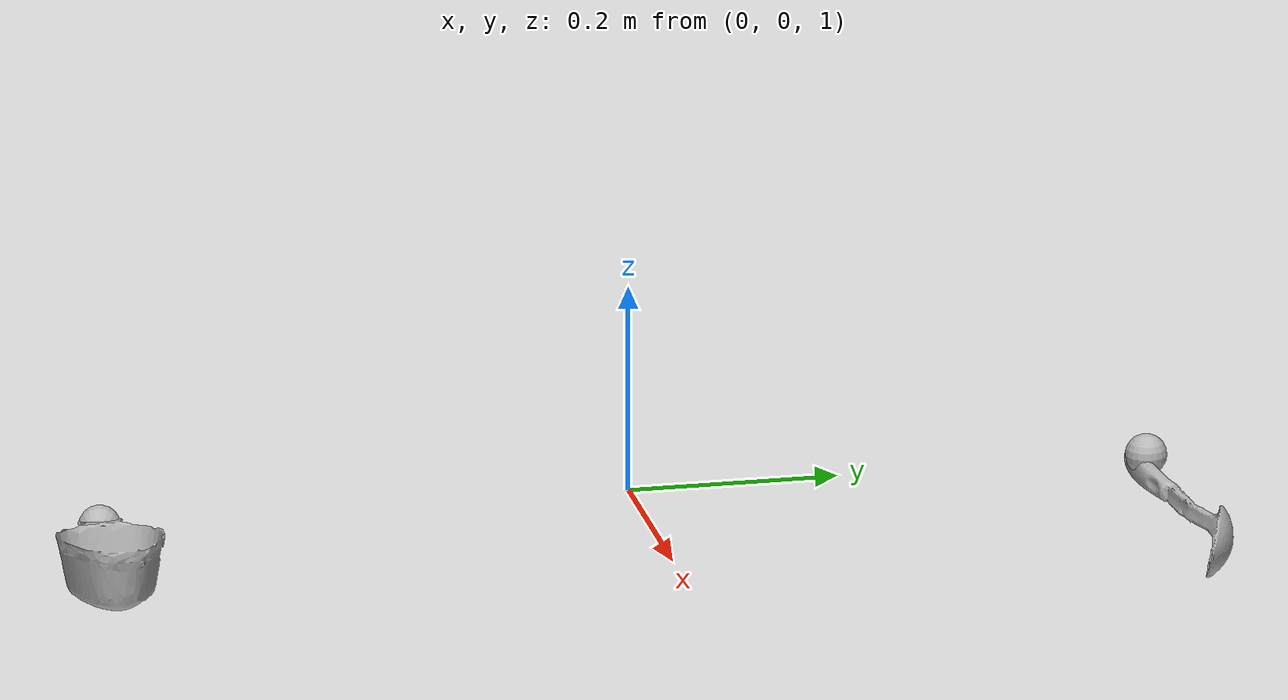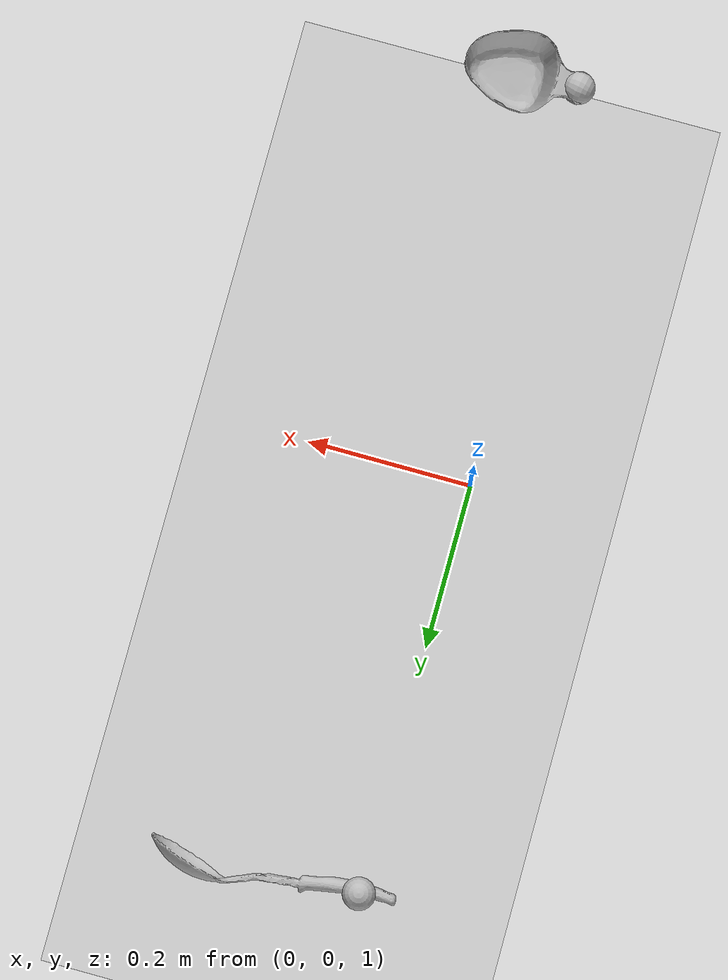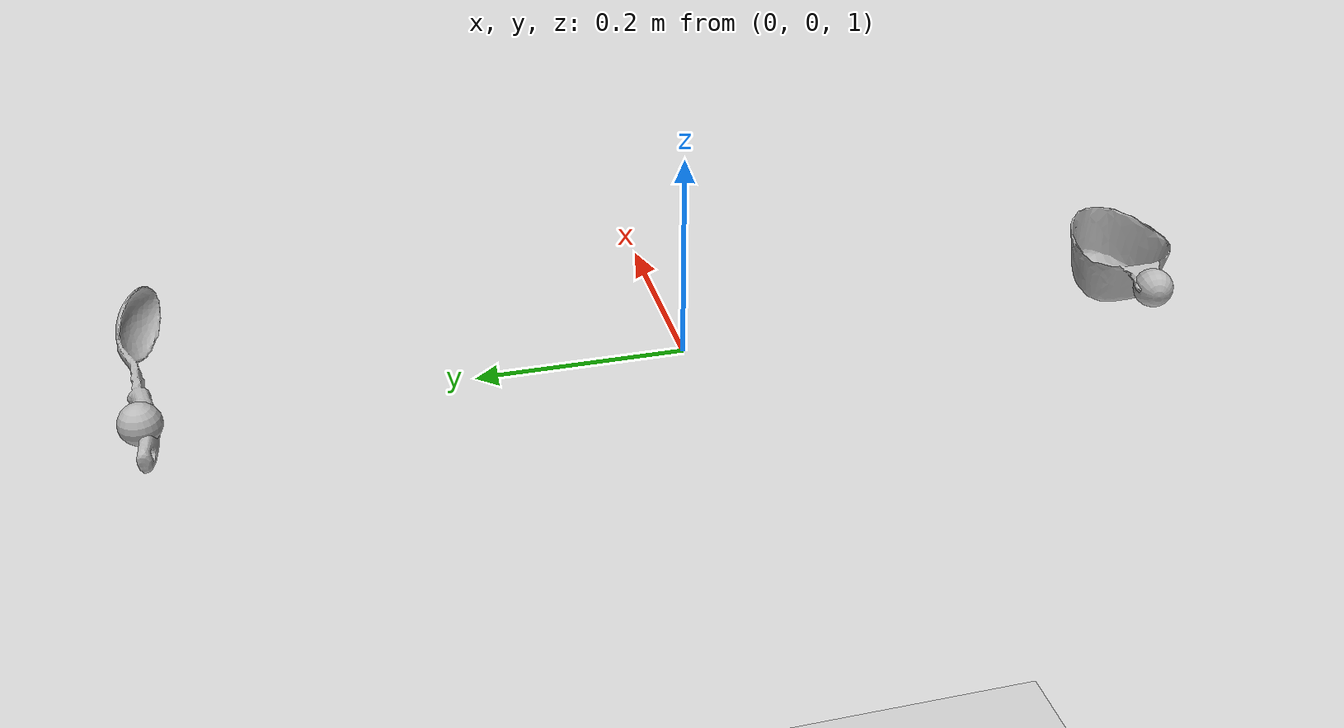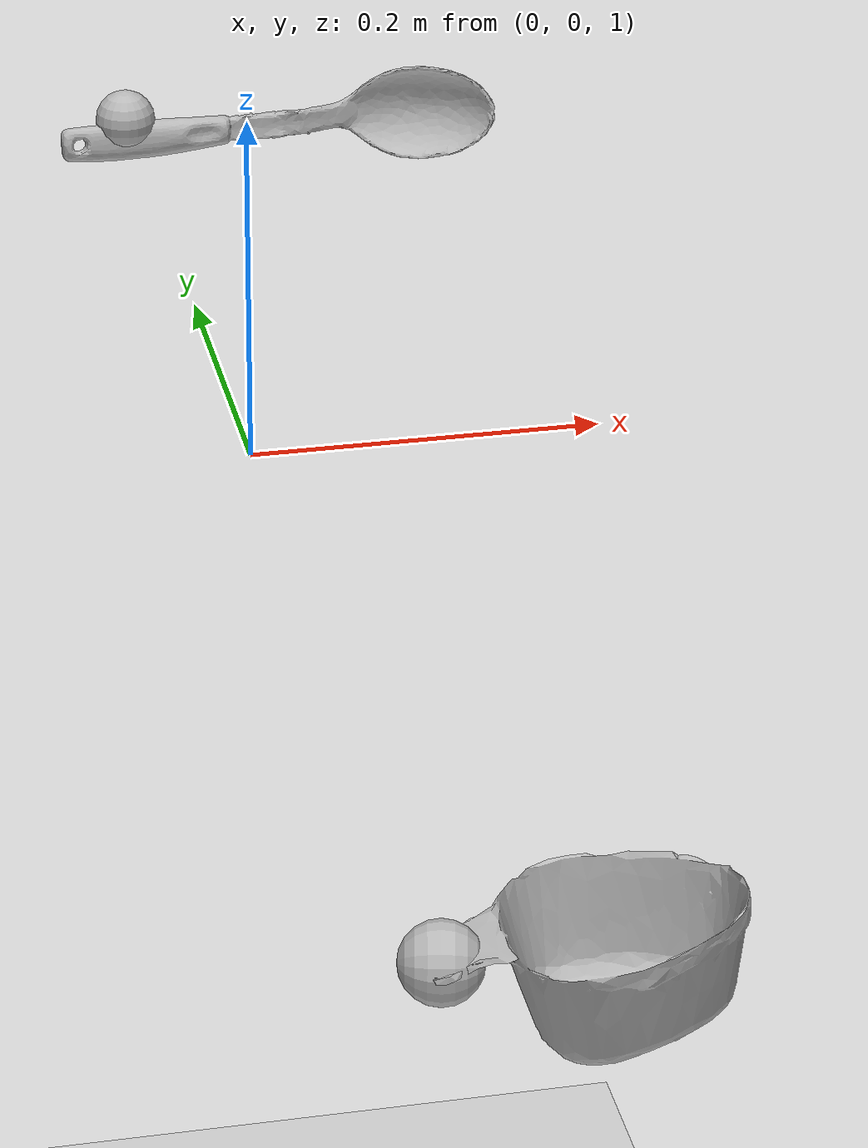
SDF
<sdf version="1.6">
 <world name="b_wildo_bowl_b_serving_spoon_v">
  <include><uri>model://sun</uri></include>
  <include><uri>model://ground_plane</uri></include>
  <include>
   <uri>model://b_serving_spoon</uri>
   <pose>0.112572 0.508131 0.984633 1.382835 0.015399 0.080779</pose>
  </include>
  <plugin name="grains_factory" filename="libGrainsFactoryPlugin.so">
   <pose>0.078818 -0.501749 0.988186 0 0 0</pose>
   <mass>0.001</mass>
   <radius>0.015</radius>
   <quantity>100</quantity>
   <friction>0.4</friction>
   <friction2>0.4</friction2>
   <velocity_decay>0.3</velocity_decay>
  </plugin>
  <include><uri>model://b_wildo_bowl</uri><pose>0.078818 -0.501749 0.988186 3.097035 0 0</pose></include>
  <include>
   <uri>model://gripper</uri>
   <name>left_ee</name>
   <pose>0 0.5 1 0 0 0</pose>
   <plugin name="l_force_controller" filename="libvelocity_controller_plugin.so">
    <linkName>link</linkName>
    <topicName>set_l_ee_twist</topicName>
    <gains>
     <linear><P>100.0</P><I>0.0</I><D>25.0</D></linear>
     <angular><P>100.0</P><I>0.0</I><D>25.0</D></angular>
    </gains>
   </plugin>
   <plugin name="l_grip" filename="libGripPlugin.so">
    <parentLinkName>link</parentLinkName>
    <childLinkName>b_serving_spoon::link</childLinkName>
    <relativePose>0.112571612 0.00813051871955 -0.0153673645109 1.3828344221275815 0.015398730956486372 0.08077832485708741</relativePose>
   </plugin>
   <plugin name="l_tf_broadcaster" filename="libtf_broadcaster_plugin.so">
    <linkName>link</linkName>
    <frameName>l_gripper_tool_frame</frameName>
   </plugin>
  </include>
  <include>
   <uri>model://gripper</uri>
   <name>right_ee</name>
   <pose>0 -0.5 1 1.547368 1.402341 1.343703</pose>
   <plugin name="r_force_controller" filename="libvelocity_controller_plugin.so">
    <linkName>link</linkName>
    <topicName>set_r_ee_twist</topicName>
    <gains>
     <linear><P>100.0</P><I>0.0</I><D>25.0</D></linear>
     <angular><P>100.0</P><I>0.0</I><D>25.0</D></angular>
    </gains>
   </plugin>
   <plugin name="r_grip" filename="libGripPlugin.so">
    <parentLinkName>link</parentLinkName>
    <childLinkName>b_wildo_bowl::link</childLinkName>
    <relativePose>0.0089419 0.0135799 0.0780419 1.55636 1.32285 -1.41637</relativePose>
   </plugin>
   <plugin name="r_tf_broadcaster" filename="libtf_broadcaster_plugin.so">
    <linkName>link</linkName>
    <frameName>r_gripper_tool_frame</frameName>
   </plugin>
  </include>
  <plugin name="feature_visualization_plugin" filename="libgiskard_visualization_plugin.so"/>
 </world>
</sdf>

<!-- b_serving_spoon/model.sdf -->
<sdf version='1.6'>
	<model name='b_serving_spoon'>
		<static>false</static>
		<pose>0 0 0 0 0 0</pose>

		<link name='link'>
			<inertial>
			<mass>0.15</mass>
			<pose>0.0019638 -6.1791e-05 0.00018857 0 0 0</pose>
				<inertia>
					<ixx>0.0000075</ixx>
					<iyy>0.00112875</iyy>
					<izz>0.00112875</izz>
				</inertia>
			</inertial>
			<sensor name="tool_contact_sensor" type="contact">
				<always_on>true</always_on>
				<update_rate>30.0</update_rate>
				<contact>
					<collision>collision</collision>
				</contact>
				<plugin name="tool_bumper" filename="libgazebo_ros_bumper.so">
					<bumperTopicName>tool_contact_sensor_state</bumperTopicName>
					<frameName>world</frameName>
				</plugin>
			</sensor>
			<collision name='collision'>
				<geometry>
					<mesh>
						<uri>model://b_serving_spoon/b_serving_spoon.dae</uri>
					</mesh>
				</geometry>
				<surface>
					<friction>
						<ode>
							<mu>0.2</mu>
							<mu2>0.2</mu2>
						</ode>
					</friction>
				</surface>
			</collision>
			<visual name='visual'>
				<geometry>
					<mesh>
						<uri>model://b_serving_spoon/b_serving_spoon.dae</uri>
					</mesh>
				</geometry>
			</visual>
		</link>
	</model>
</sdf>

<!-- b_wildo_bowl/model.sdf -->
<sdf version='1.6'>
    <model name='b_wildo_bowl'>
        <static>false</static>
        <pose>0 0 0 0 0 0</pose>

        <link name='link'>
            <inertial>
                <mass>0.40</mass>
                <pose>0.000382297035518770	-0.000149204207528814	0.00495379249275721 0 0 0</pose>
                <inertia>
                    <ixx>7.972462473661376e-05</ixx>
                    <ixy>0.0</ixy>
                    <ixz>0.0</ixz>
                    <iyy>9.743942735555959e-05</iyy>
                    <iyz>0.0</iyz>
                    <izz>3.897022921041362e-05</izz>
                </inertia>
            </inertial>

            <collision name='collision'>
                <geometry>
                    <mesh>
                        <uri>model://b_wildo_bowl/b_wildo_bowl.dae</uri>
                    </mesh>
                </geometry>
                <surface>
                    <friction>
                        <ode>
                            <mu>0.2</mu>
                            <mu2>0.2</mu2>
                        </ode>
                    </friction>
                </surface>
            </collision>
            <visual name='visual'>
                <geometry>
                    <mesh>
                        <uri>model://b_wildo_bowl/b_wildo_bowl.dae</uri>
                    </mesh>
                </geometry>
            </visual>
        </link>
    </model>
</sdf>

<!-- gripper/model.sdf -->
<sdf version='1.6'>
    <model name='gripper'>
        <static>false</static>
        <allow_auto_disable>false</allow_auto_disable>

        <pose>0 0 0 0 0 0</pose>

        <link name='link'>
            <pose>0 0 0 0 0 0</pose>

            <gravity>false</gravity>

            <visual name='visual'>
                <geometry>
                    <sphere>
                        <radius>0.02</radius>
                    </sphere>
                </geometry>
            </visual>

        </link>
    </model>
</sdf>
